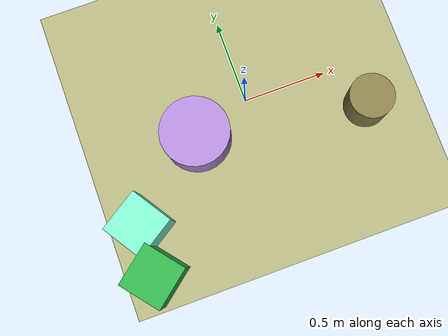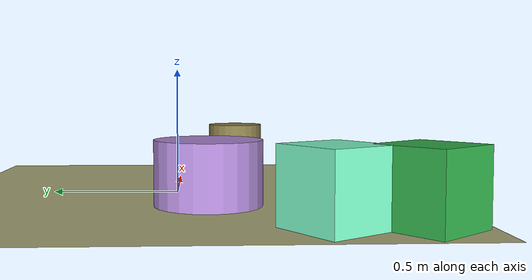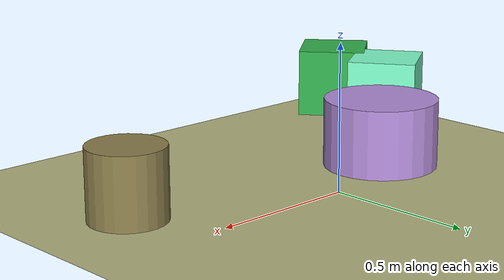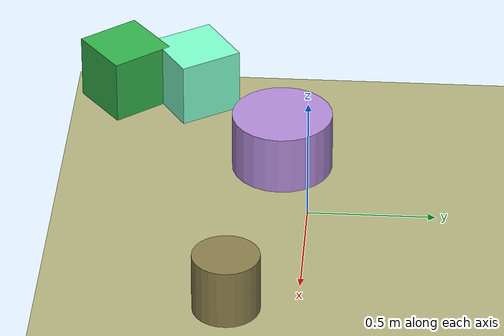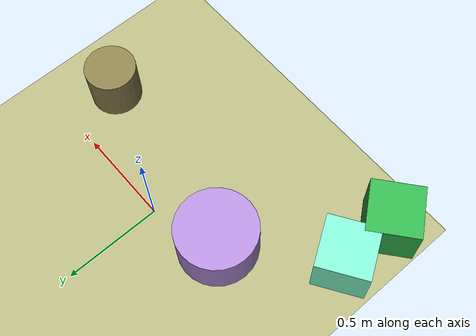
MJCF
<mujoco>
   <asset>
<texture type="skybox" builtin="gradient" rgb1="0.3 0.1 0.6" rgb2="0.2 0.1 0.6" width="256" height="256"/>
<texture name="checker_0" builtin="checker" rgb1="0.8 0.9 0.9" rgb2="0.6 0.2 0.8" width="200" height="200"/>
<texture name="checker_1" builtin="checker" rgb1="0.6 0.9 0.1" rgb2="0.5 0.1 0.5" width="200" height="200"/>
<texture name="gradient_2" builtin="gradient" rgb1="0.2 0.9 0.3" rgb2="0.2 0.5 0.3" width="200" height="200"/>
<texture name="flat_3" builtin="flat" rgb1="0.5 1.0 0.8" rgb2="0.5 1.0 0.8"  width="200" height="200"/><material name="checker_0_mat" reflectance="0" texrepeat="4 4" texture="checker_0" texuniform="false" />
<material name="checker_1_mat" reflectance="0" texrepeat="6 6" texture="checker_1" texuniform="false" />
<material name="gradient_2_mat" reflectance="0" texture="gradient_2" texuniform="true"/>
<material name="flat_3_mat" reflectance="0" texture="flat_3" texuniform="true"/>
   </asset>

   <worldbody>
      <light diffuse=".9 .9 .9" pos="0 0 3" dir="0 0 -1"/>
     <geom type="plane" size="1 1 0.1" rgba="0.7 0.7 0.5 1"/>
<geom type="cylinder" pos="-0.34 -0.12 0.12" size="0.2 0.12 0.12" material="checker_0_mat" euler="0 0 29" />
<geom type="cylinder" pos="0.66 -0.27 0.12" size="0.13 0.12 0.12" material="checker_1_mat" euler="0 0 50" />
<geom type="box" pos="-0.81 -0.79 0.13" size="0.13 0.13 0.13" material="gradient_2_mat" euler="0 0 39" />
<geom type="box" pos="-0.8 -0.5 0.13" size="0.13 0.13 0.13" material="flat_3_mat" euler="0 0 33" /><camera euler="60 0 180" fovy="60" name="camera1" pos="-0.2 -1.5 1"></camera>   </worldbody>
</mujoco>
